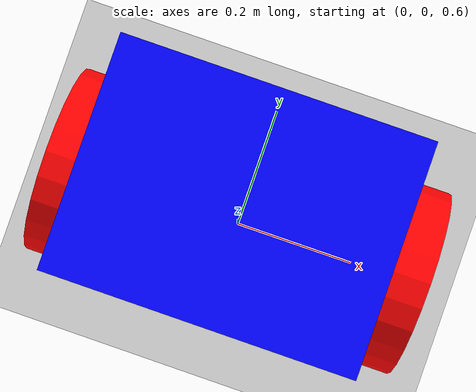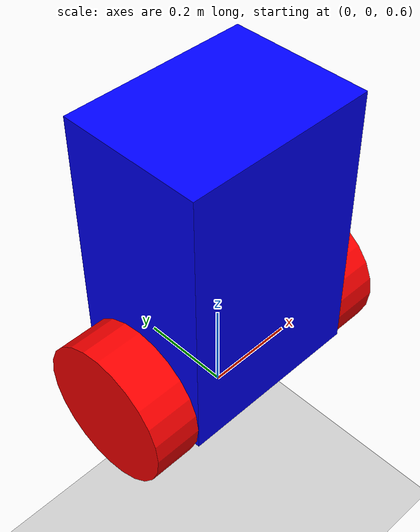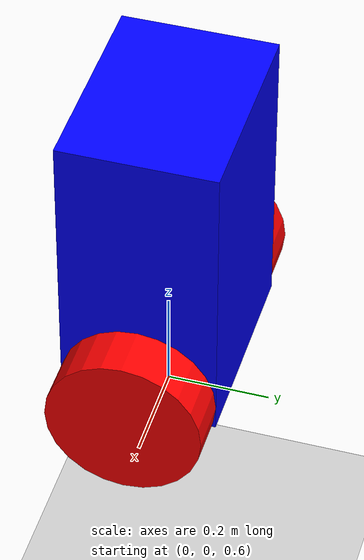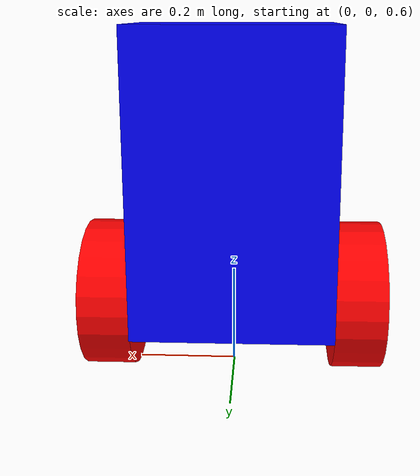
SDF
<?xml version="1.0" ?>
<sdf version="1.10">
    <world name="self_balancing_world">

        <physics name="1ms" type="ignored">
            <max_step_size>0.001</max_step_size>
            <real_time_factor>1.0</real_time_factor>
        </physics>

        <plugin
            filename="gz-sim-physics-system"
            name="gz::sim::systems::Physics">
        </plugin>
        <plugin
            filename="gz-sim-user-commands-system"
            name="gz::sim::systems::UserCommands">
        </plugin>
        <plugin
            filename="gz-sim-scene-broadcaster-system"
            name="gz::sim::systems::SceneBroadcaster">
        </plugin>
        <plugin filename="gz-sim-imu-system"
            name="gz::sim::systems::Imu">
        </plugin>

        <light type="directional" name="sun">
            <cast_shadows>true</cast_shadows>
            <pose>0 0 10 0 0 0</pose>
            <diffuse>0.8 0.8 0.8 1</diffuse>
            <specular>0.2 0.2 0.2 1</specular>
            <attenuation>
                <range>1000</range>
                <constant>0.9</constant>
                <linear>0.01</linear>
                <quadratic>0.001</quadratic>
            </attenuation>
            <direction>-0.5 0.1 -0.9</direction>
        </light>

        <model name="ground_plane">
            <static>true</static>
            <link name="link">
                <collision name="collision">
                    <geometry>
                        <plane>
                            <normal>0 0 1</normal>
                        </plane>
                    </geometry>
                </collision>
                <visual name="visual">
                    <geometry>
                        <plane>
                            <normal>0 0 1</normal>
                        <size>100 100</size>
                        </plane>
                    </geometry>
                    <material>
                        <ambient>0.8 0.8 0.8 1</ambient>
                        <diffuse>0.8 0.8 0.8 1</diffuse>
                        <specular>0.8 0.8 0.8 1</specular>
                    </material>
                </visual>
            </link>
        </model>

        <model name='self_Balancer' canonical_link='boxBody'>
            <pose relative_to='world'>0 0 0 0 0 0</pose>
            <link name='boxBody'>
                <pose relative_to='__model__'>0 0 1 0 0 0</pose>
                <inertial>
                    <mass>.1</mass>
                    <inertia>
                        <ixx>0.001333</ixx>
                        <ixy>0</ixy>
                        <ixz>0</ixz>
                        <iyy>0.00075</iyy>
                        <iyz>0</iyz>
                        <izz>0.002083</izz>
                    </inertia>
                </inertial>

                <visual name='visual'>
                    <geometry>
                        <box>
                            <size>0.4 0.3 0.6</size>
                        </box>
                    </geometry>
                    <material>
                        <ambient>0.0 0.0 1.0 1</ambient>
                        <diffuse>0.0 0.0 1.0 1</diffuse>
                        <specular>0.0 0.0 1.0 1</specular>
                    </material>
                </visual>

                <collision name='collision'>
                    <geometry>
                        <box>
                            <size>0.4 0.3 0.6</size>
                        </box>
                    </geometry>
                </collision>

                <sensor name="imu_sensor" type="imu">
                    <always_on>1</always_on>
                    <update_rate>20</update_rate>
                    <visualize>true</visualize>
                    <topic>imu</topic>
                </sensor>
            </link>

            <link name='left_wheel'>
                <pose relative_to="boxBody">-0.25 0 -0.25 0 1.570796 0</pose>
                <inertial>
                    <mass>.05</mass>
                    <inertia>
                        <ixx>0.000562</ixx>
                        <ixy>0</ixy>
                        <ixz>0</ixz>
                        <iyy>0.000323</iyy>
                        <iyz>0</iyz>
                        <izz>0.000323</izz>
                    </inertia>
                </inertial>

                <visual name='visual'>
                    <geometry>
                        <cylinder>
                            <radius>0.15</radius>
                            <length>0.1</length>
                        </cylinder>
                    </geometry>
                    <material>
                        <ambient>1.0 0.0 0.0 1</ambient>
                        <diffuse>1.0 0.0 0.0 1</diffuse>
                        <specular>1.0 0.0 0.0 1</specular>
                    </material>
                </visual>

                <collision name='collision'>
                    <geometry>
                        <cylinder>
                            <radius>0.15</radius>
                            <length>0.1</length>
                        </cylinder>
                    </geometry>
                </collision>
            </link>

            <link name='right_wheel'>
                <pose relative_to="boxBody">0.25 0 -.25 0 1.570796 0</pose>
                <inertial>
                    <mass>.05</mass>
                    <inertia>
                        <ixx>0.000562</ixx>
                        <ixy>0</ixy>
                        <ixz>0</ixz>
                        <iyy>0.000323</iyy>
                        <iyz>0</iyz>
                        <izz>0.000323</izz>
                    </inertia>
                </inertial>

                <visual name='visual'>
                    <geometry>
                        <cylinder>
                            <radius>0.15</radius>
                            <length>0.1</length>
                        </cylinder>
                    </geometry>
                    <material>
                        <ambient>1.0 0.0 0.0 1</ambient>
                        <diffuse>1.0 0.0 0.0 1</diffuse>
                        <specular>1.0 0.0 0.0 1</specular>
                    </material>
                </visual>

                <collision name='collision'>
                    <geometry>
                        <cylinder>
                            <radius>0.15</radius>
                            <length>0.1</length>
                        </cylinder>
                    </geometry>
                </collision>
            </link>

            <joint name='leftJoint' type='revolute'>
                <pose relative_to='left_wheel'/>
                <parent>boxBody</parent>
                <child>left_wheel</child>
                <axis>
                    <xyz expressed_in='__model__'>1 0 0</xyz>
                    <limit>
                        <lower>-1.79769e+308</lower>    <!--negative infinity-->
                        <upper>1.79769e+308</upper>     <!--positive infinity-->
                    </limit>
                </axis>
            </joint>

            <joint name='rightJoint' type='revolute'>
                <pose relative_to='right_wheel'/>
                <parent>boxBody</parent>
                <child>right_wheel</child>
                <axis>
                    <xyz expressed_in='__model__'>1 0 0</xyz>
                    <limit>
                        <lower>-1.79769e+308</lower>    <!--negative infinity-->
                        <upper>1.79769e+308</upper>     <!--positive infinity-->
                    </limit>
                </axis>
            </joint>

            <!--diff drive plugin-->
            <plugin
                filename="gz-sim-diff-drive-system"
                name="gz::sim::systems::DiffDrive">
                <left_joint>leftJoint</left_joint>
                <right_joint>rightJoint</right_joint>
                <wheel_separation>.5</wheel_separation>
                <wheel_radius>0.15</wheel_radius>
                <odom_publish_frequency>20</odom_publish_frequency>
                <topic>balanceVel</topic>
            </plugin>
        </model>
    </world>
</sdf>
